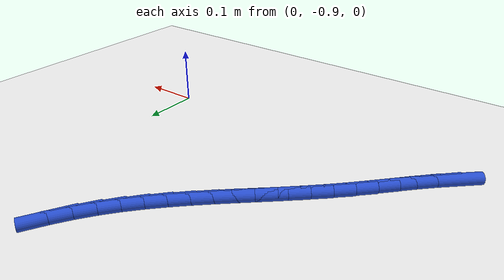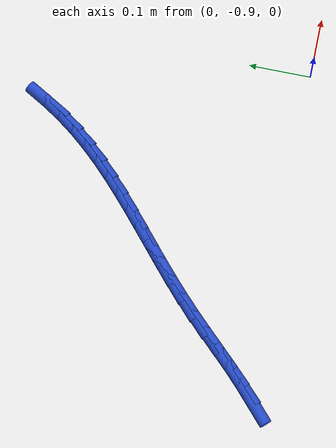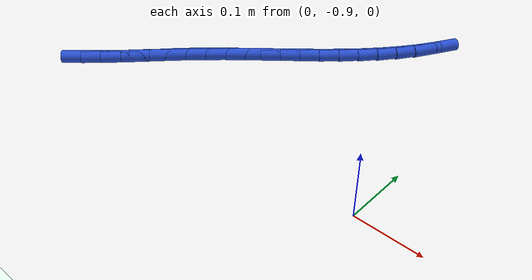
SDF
<sdf version="1.6">
 <world name="default">
  <model name="ground_plane">
   <static>1</static>
   <link name="link">
    <collision name="collision">
     <geometry><plane><normal>0 0 1</normal><size>100 100</size></plane></geometry>
     <surface><friction><ode><mu>100</mu><mu2>50</mu2></ode></friction></surface>
    </collision>
    <visual name="visual">
     <cast_shadows>0</cast_shadows>
     <geometry><plane><normal>0 0 1</normal><size>100 100</size></plane></geometry>
     <material>
      <script><uri>file://media/materials/scripts/gazebo.material</uri><name>Gazebo/WhiteGlow</name></script>
     </material>
    </visual>
   </link>
  </model>
  <model name="line">
   <link name="link_186">
    <pose>-0.538636599543288 -0.9109454440264356 0.01 0 1.57 0.7400066255637174</pose>
    <collision name="collision">
     <geometry><cylinder><radius>0.01</radius><length>0.08</length></cylinder></geometry>
    </collision>
    <visual name="visual">
     <material>
      <script><name>Gazebo/Blue</name><uri>file://media/materials/scripts/gazebo.material</uri></script>
     </material>
     <geometry><cylinder><radius>0.01</radius><length>0.08</length></cylinder></geometry>
    </visual>
   </link>
   <link name="link_187">
    <pose>-0.5149010897098844 -0.8892725100540314 0.01 0 1.57 0.7789652358819739</pose>
    <collision name="collision">
     <geometry><cylinder><radius>0.01</radius><length>0.08</length></cylinder></geometry>
    </collision>
    <visual name="visual">
     <material>
      <script><name>Gazebo/Blue</name><uri>file://media/materials/scripts/gazebo.material</uri></script>
     </material>
     <geometry><cylinder><radius>0.01</radius><length>0.08</length></cylinder></geometry>
    </visual>
   </link>
   <link name="link_188">
    <pose>-0.49169741521881194 -0.86636546656123 0.01 0 1.57 0.8013664451349372</pose>
    <collision name="collision">
     <geometry><cylinder><radius>0.01</radius><length>0.08</length></cylinder></geometry>
    </collision>
    <visual name="visual">
     <material>
      <script><name>Gazebo/Blue</name><uri>file://media/materials/scripts/gazebo.material</uri></script>
     </material>
     <geometry><cylinder><radius>0.01</radius><length>0.08</length></cylinder></geometry>
    </visual>
   </link>
   <link name="link_189">
    <pose>-0.46876732239335944 -0.8426911176200522 0.01 0 1.57 0.8080024206571241</pose>
    <collision name="collision">
     <geometry><cylinder><radius>0.01</radius><length>0.08</length></cylinder></geometry>
    </collision>
    <visual name="visual">
     <material>
      <script><name>Gazebo/Blue</name><uri>file://media/materials/scripts/gazebo.material</uri></script>
     </material>
     <geometry><cylinder><radius>0.01</radius><length>0.08</length></cylinder></geometry>
    </visual>
   </link>
   <link name="link_190">
    <pose>-0.44585255755681424 -0.8187162673025166 0.01 0 1.57 0.7992552544421689</pose>
    <collision name="collision">
     <geometry><cylinder><radius>0.01</radius><length>0.08</length></cylinder></geometry>
    </collision>
    <visual name="visual">
     <material>
      <script><name>Gazebo/Blue</name><uri>file://media/materials/scripts/gazebo.material</uri></script>
     </material>
     <geometry><cylinder><radius>0.01</radius><length>0.08</length></cylinder></geometry>
    </visual>
   </link>
   <link name="link_191">
    <pose>-0.4226948670324655 -0.794907719680644 0.01 0 1.57 0.7755480094313223</pose>
    <collision name="collision">
     <geometry><cylinder><radius>0.01</radius><length>0.08</length></cylinder></geometry>
    </collision>
    <visual name="visual">
     <material>
      <script><name>Gazebo/Blue</name><uri>file://media/materials/scripts/gazebo.material</uri></script>
     </material>
     <geometry><cylinder><radius>0.01</radius><length>0.08</length></cylinder></geometry>
    </visual>
   </link>
   <link name="link_192">
    <pose>-0.3990449416906902 -0.7717191753982158 0.01 0 1.57 0.7479390544361687</pose>
    <collision name="collision">
     <geometry><cylinder><radius>0.01</radius><length>0.08</length></cylinder></geometry>
    </collision>
    <visual name="visual">
     <material>
      <script><name>Gazebo/Blue</name><uri>file://media/materials/scripts/gazebo.material</uri></script>
     </material>
     <geometry><cylinder><radius>0.01</radius><length>0.08</length></cylinder></geometry>
    </visual>
   </link>
   <link name="link_193">
    <pose>-0.374868478595432 -0.7492893590359445 0.01 0 1.57 0.7280574585123752</pose>
    <collision name="collision">
     <geometry><cylinder><radius>0.01</radius><length>0.08</length></cylinder></geometry>
    </collision>
    <visual name="visual">
     <material>
      <script><name>Gazebo/Blue</name><uri>file://media/materials/scripts/gazebo.material</uri></script>
     </material>
     <geometry><cylinder><radius>0.01</radius><length>0.08</length></cylinder></geometry>
    </visual>
   </link>
   <link name="link_194">
    <pose>-0.35035146747336277 -0.7274342746311072 0.01 0 1.57 0.716531790613256</pose>
    <collision name="collision">
     <geometry><cylinder><radius>0.01</radius><length>0.08</length></cylinder></geometry>
    </collision>
    <visual name="visual">
     <material>
      <script><name>Gazebo/Blue</name><uri>file://media/materials/scripts/gazebo.material</uri></script>
     </material>
     <geometry><cylinder><radius>0.01</radius><length>0.08</length></cylinder></geometry>
    </visual>
   </link>
   <link name="link_195">
    <pose>-0.3256899000876347 -0.7059552736101847 0.01 0 1.57 0.7134588478360876</pose>
    <collision name="collision">
     <geometry><cylinder><radius>0.01</radius><length>0.08</length></cylinder></geometry>
    </collision>
    <visual name="visual">
     <material>
      <script><name>Gazebo/Blue</name><uri>file://media/materials/scripts/gazebo.material</uri></script>
     </material>
     <geometry><cylinder><radius>0.01</radius><length>0.08</length></cylinder></geometry>
    </visual>
   </link>
   <link name="link_196">
    <pose>-0.30107976820140125 -0.6846537073996584 0.01 0 1.57 0.7189558343666441</pose>
    <collision name="collision">
     <geometry><cylinder><radius>0.01</radius><length>0.08</length></cylinder></geometry>
    </collision>
    <visual name="visual">
     <material>
      <script><name>Gazebo/Blue</name><uri>file://media/materials/scripts/gazebo.material</uri></script>
     </material>
     <geometry><cylinder><radius>0.01</radius><length>0.08</length></cylinder></geometry>
    </visual>
   </link>
   <link name="link_197">
    <pose>-0.2767170635778145 -0.6633309274260086 0.01 0 1.57 0.7331680479015901</pose>
    <collision name="collision">
     <geometry><cylinder><radius>0.01</radius><length>0.08</length></cylinder></geometry>
    </collision>
    <visual name="visual">
     <material>
      <script><name>Gazebo/Blue</name><uri>file://media/materials/scripts/gazebo.material</uri></script>
     </material>
     <geometry><cylinder><radius>0.01</radius><length>0.08</length></cylinder></geometry>
    </visual>
   </link>
   <link name="link_198">
    <pose>-0.25279777798002667 -0.6417882851157167 0.01 0 1.57 0.7562576166173398</pose>
    <collision name="collision">
     <geometry><cylinder><radius>0.01</radius><length>0.08</length></cylinder></geometry>
    </collision>
    <visual name="visual">
     <material>
      <script><name>Gazebo/Blue</name><uri>file://media/materials/scripts/gazebo.material</uri></script>
     </material>
     <geometry><cylinder><radius>0.01</radius><length>0.08</length></cylinder></geometry>
    </visual>
   </link>
   <link name="link_199">
    <pose>-0.22951790317118978 -0.6198271318952626 0.01 0 1.57 0.7883708816170374</pose>
    <collision name="collision">
     <geometry><cylinder><radius>0.01</radius><length>0.08</length></cylinder></geometry>
    </collision>
    <visual name="visual">
     <material>
      <script><name>Gazebo/Blue</name><uri>file://media/materials/scripts/gazebo.material</uri></script>
     </material>
     <geometry><cylinder><radius>0.01</radius><length>0.08</length></cylinder></geometry>
    </visual>
   </link>
   <link name="link_200">
    <pose>-0.20707343091445743 -0.5972488191911285 0.01 0 1.57 0.8295819903669849</pose>
    <collision name="collision">
     <geometry><cylinder><radius>0.01</radius><length>0.08</length></cylinder></geometry>
    </collision>
    <visual name="visual">
     <material>
      <script><name>Gazebo/Blue</name><uri>file://media/materials/scripts/gazebo.material</uri></script>
     </material>
     <geometry><cylinder><radius>0.01</radius><length>0.08</length></cylinder></geometry>
    </visual>
   </link>
   <link name="link_201">
    <pose>-0.18566035297298147 -0.5738546984297942 0.01 0 1.57 0.8798123221846513</pose>
    <collision name="collision">
     <geometry><cylinder><radius>0.01</radius><length>0.08</length></cylinder></geometry>
    </collision>
    <visual name="visual">
     <material>
      <script><name>Gazebo/Blue</name><uri>file://media/materials/scripts/gazebo.material</uri></script>
     </material>
     <geometry><cylinder><radius>0.01</radius><length>0.08</length></cylinder></geometry>
    </visual>
   </link>
   <link name="link_202">
    <pose>-0.1654746611099144 -0.5494461210377413 0.01 0 1.57 0.9381301080040705</pose>
    <collision name="collision">
     <geometry><cylinder><radius>0.01</radius><length>0.08</length></cylinder></geometry>
    </collision>
    <visual name="visual">
     <material>
      <script><name>Gazebo/Blue</name><uri>file://media/materials/scripts/gazebo.material</uri></script>
     </material>
     <geometry><cylinder><radius>0.01</radius><length>0.08</length></cylinder></geometry>
    </visual>
   </link>
   <link name="link_203">
    <pose>-0.1466998763715666 -0.5238397059679462 0.01 0 1.57 0.9966655151449823</pose>
    <collision name="collision">
     <geometry><cylinder><radius>0.01</radius><length>0.08</length></cylinder></geometry>
    </collision>
    <visual name="visual">
     <material>
      <script><name>Gazebo/Blue</name><uri>file://media/materials/scripts/gazebo.material</uri></script>
     </material>
     <geometry><cylinder><radius>0.01</radius><length>0.08</length></cylinder></geometry>
    </visual>
   </link>
   <link name="link_204">
    <pose>-0.1293657320201156 -0.4970403499683959 0.01 0 1.57 1.0503794718230943</pose>
    <collision name="collision">
     <geometry><cylinder><radius>0.01</radius><length>0.08</length></cylinder></geometry>
    </collision>
    <visual name="visual">
     <material>
      <script><name>Gazebo/Blue</name><uri>file://media/materials/scripts/gazebo.material</uri></script>
     </material>
     <geometry><cylinder><radius>0.01</radius><length>0.08</length></cylinder></geometry>
    </visual>
   </link>
  </model>
 </world>
</sdf>
